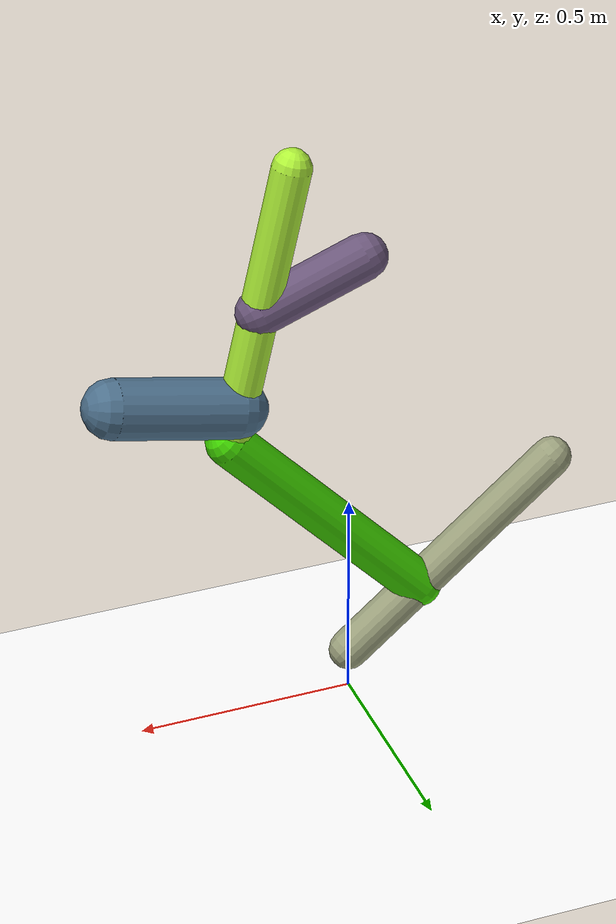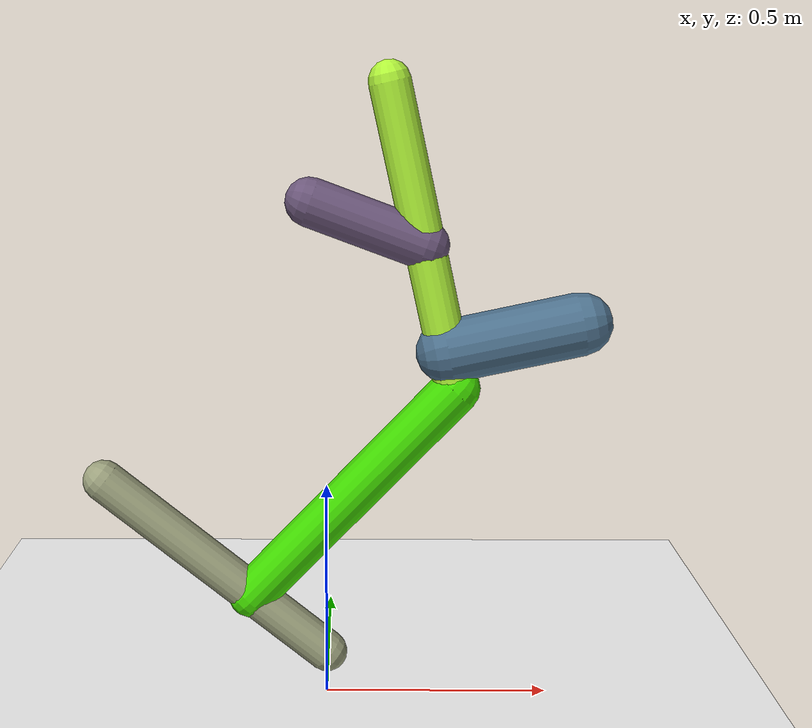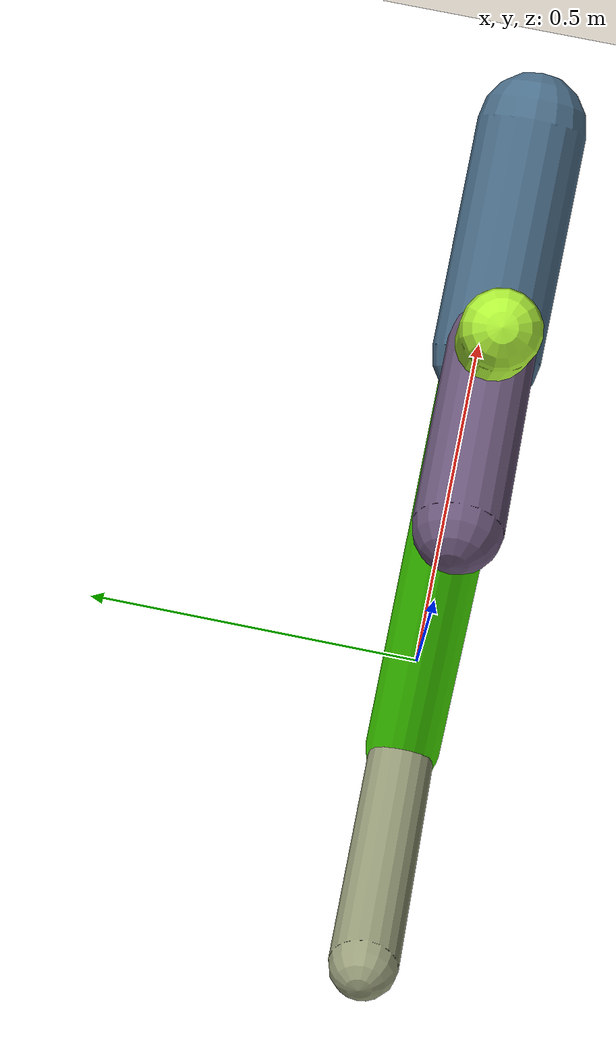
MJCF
<mujoco model="morphology">
  <option timestep="0.01"/>
  <default>
    <default class="/"/>
  </default>
  <asset>
    <texture name="texplane" type="2d" builtin="checker" rgb1="0.1 0.2 0.3" rgb2="0.2 0.3 0.4" width="300" height="300"/>
    <material name="MatPlane" class="/" texture="texplane" texrepeat="20 20" specular="1" shininess="1" reflectance="0.5"/>
  </asset>
  <worldbody>
    <light name="//unnamed_light_0" class="/" directional="true" pos="0 0 1.5" dir="0 0 -1.3" cutoff="1e+02" exponent="1" diffuse="1 1 1" specular="0.1 0.1 0.1"/>
    <geom name="ground" class="/" type="plane" size="15 15 0.5" material="MatPlane" rgba="1 1 1 1"/>
    <body name="body" pos="0 0 0.1">
      <geom name="geom0" class="/" type="capsule" contype="1" conaffinity="1" condim="3" size="0.046" rgba="0.61 0.63 0.49 1" friction="0.4 0.1 0.1" fromto="0 0 0 -0.49 0 0.41"/>
      <body name="body1" pos="-0.17 0 0.14">
        <geom name="geom1" class="/" type="capsule" contype="1" conaffinity="1" condim="3" size="0.052" rgba="0.26 0.86 0.00045 1" friction="0.4 0.1 0.1" fromto="0 0 0 0.45 0 0.48"/>
        <body name="body2" pos="0.45 0 0.47">
          <geom name="geom2" class="/" type="capsule" contype="1" conaffinity="1" condim="3" size="0.044" rgba="0.69 0.95 0.22 1" friction="0.4 0.1 0.1" fromto="0 0 0 -0.15 0 0.65"/>
          <body name="body3" pos="-0.073 0 0.32">
            <geom name="geom3" class="/" type="capsule" contype="1" conaffinity="1" condim="3" size="0.052" rgba="0.42 0.34 0.48 1" friction="0.4 0.1 0.1" fromto="0 0 0 -0.24 0 0.089"/>
            <joint name="joint3" class="/" type="hinge" axis="0 1 0" limited="true" stiffness="20" range="-32 32" armature="0.1" damping="2"/>
          </body>
          <body name="body4" pos="-0.021 0 0.093">
            <geom name="geom4" class="/" type="capsule" contype="1" conaffinity="1" condim="3" size="0.068" rgba="0.3 0.44 0.55 1" friction="0.4 0.1 0.1" fromto="0 0 0 0.28 0 0.06"/>
            <joint name="joint4" class="/" type="hinge" axis="0 1 0" limited="true" stiffness="20" range="-66 66" armature="0.1" damping="2"/>
          </body>
          <joint name="joint2" class="/" type="hinge" axis="0 1 0" limited="true" stiffness="20" range="-37 37" armature="0.1" damping="2"/>
        </body>
        <joint name="joint1" class="/" type="hinge" axis="0 1 0" limited="true" stiffness="20" range="-35 35" armature="0.1" damping="2"/>
      </body>
      <joint name="rootx" class="/" type="slide" axis="1 0 0" limited="false" stiffness="0" armature="0" damping="0"/>
      <joint name="rootz" class="/" type="slide" axis="0 0 1" limited="false" stiffness="0" armature="0" damping="0"/>
      <joint name="rooty" class="/" type="hinge" axis="0 1 0" limited="false" stiffness="0" armature="0" damping="0"/>
    </body>
  </worldbody>
  <actuator>
    <motor name="motor3" class="/" ctrllimited="true" ctrlrange="-1 1" gear="1e+02" joint="joint3"/>
    <motor name="motor4" class="/" ctrllimited="true" ctrlrange="-1 1" gear="1e+02" joint="joint4"/>
    <motor name="motor2" class="/" ctrllimited="true" ctrlrange="-1 1" gear="1.4e+02" joint="joint2"/>
    <motor name="motor1" class="/" ctrllimited="true" ctrlrange="-1 1" gear="2e+02" joint="joint1"/>
  </actuator>
  <sensor>
    <subtreelinvel name="velocity" body="body"/>
  </sensor>
</mujoco>
